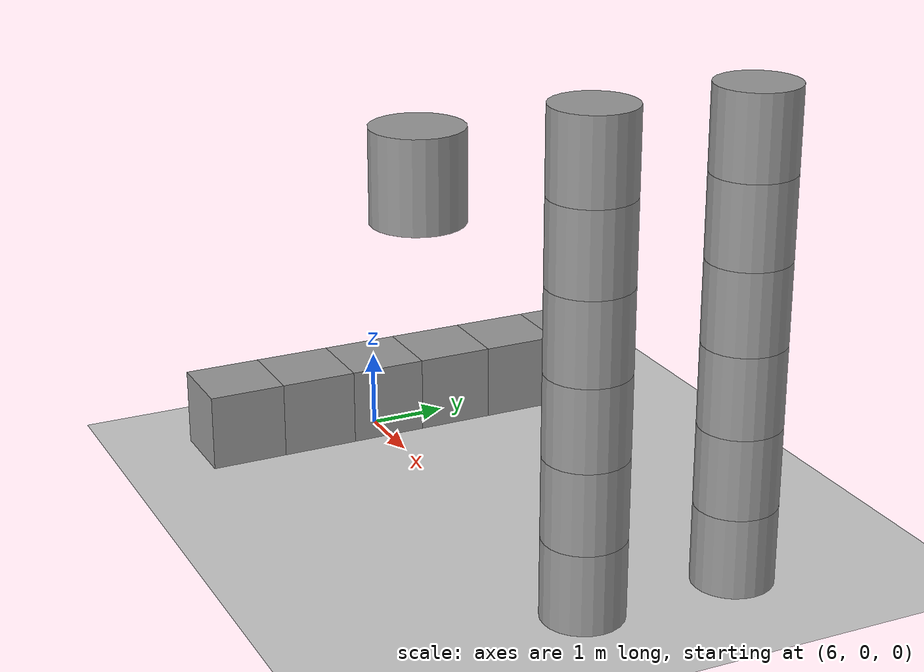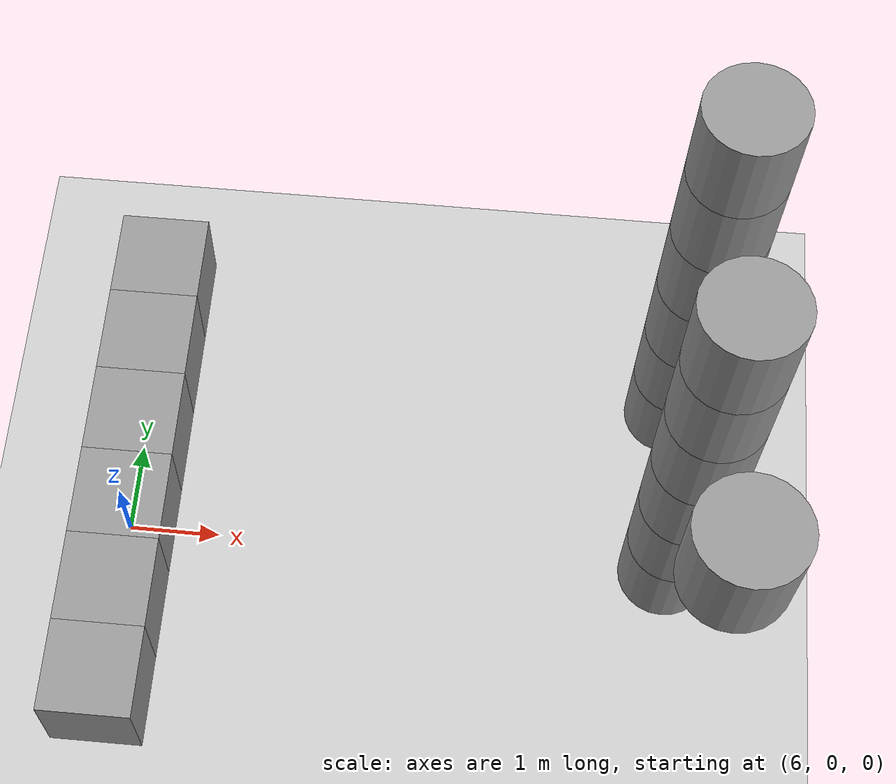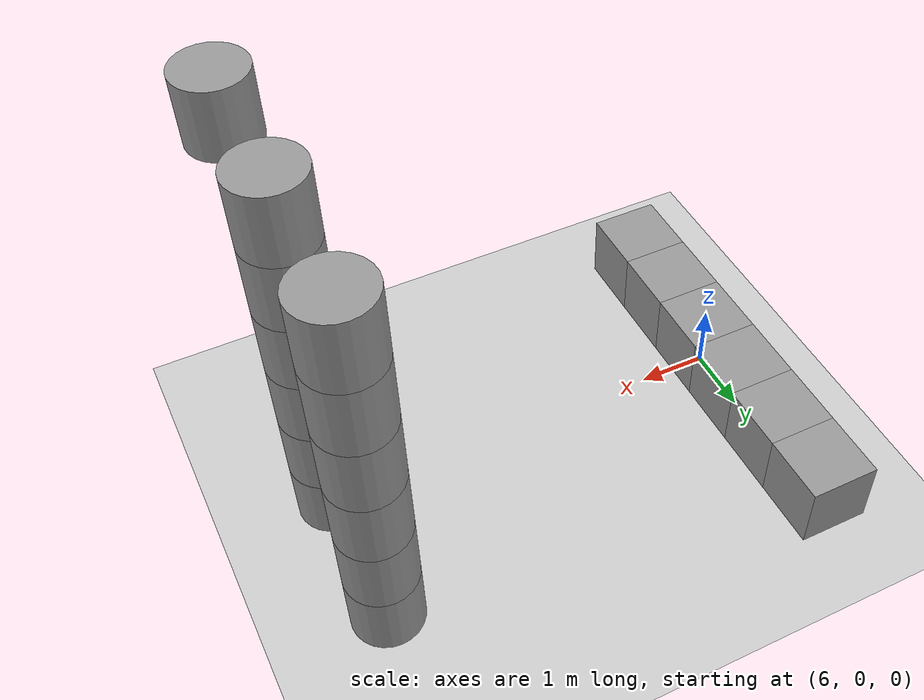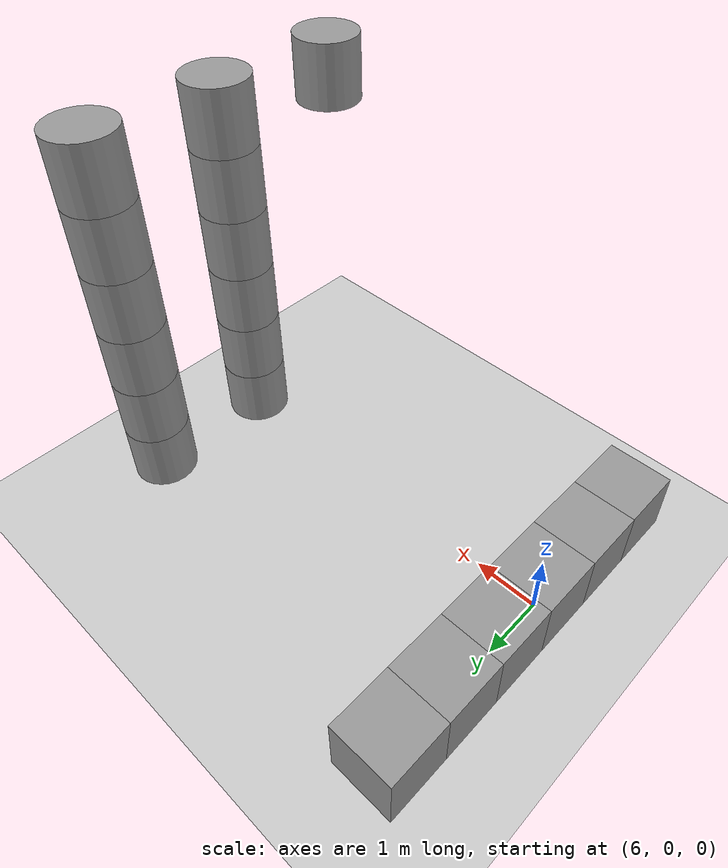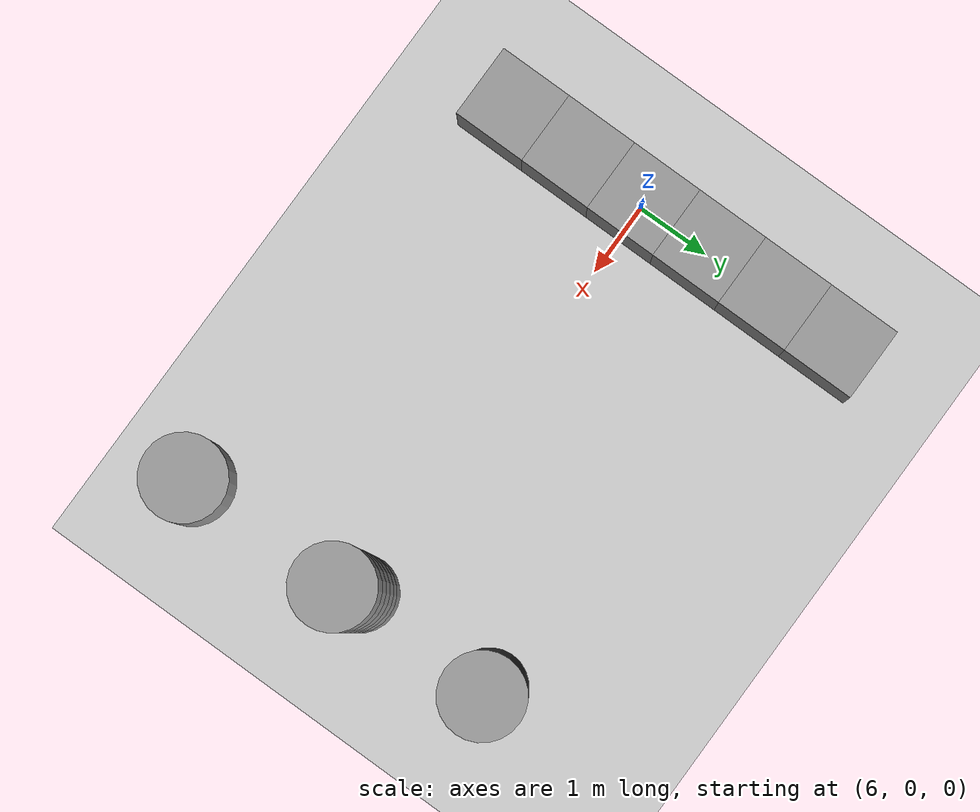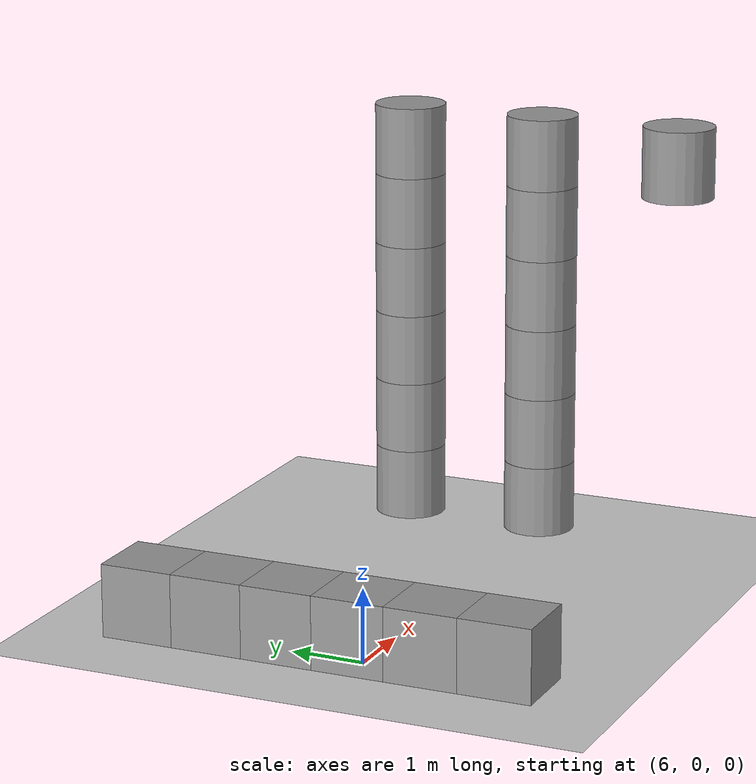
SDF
<sdf version="1.6">
 <world name="default">
  <model name="ground_plane">
   <static>1</static>
   <link name="link">
    <collision name="collision">
     <geometry><plane><normal>0 0 1</normal><size>100 100</size></plane></geometry>
     <surface>
      <contact><collide_bitmask>65535</collide_bitmask></contact>
      <friction><ode><mu>100</mu><mu2>50</mu2></ode></friction>
     </surface>
    </collision>
    <visual name="visual">
     <cast_shadows>0</cast_shadows>
     <geometry><plane><normal>0 0 1</normal><size>100 100</size></plane></geometry>
     <material>
      <script><uri>file://media/materials/scripts/gazebo.material</uri><name>Gazebo/Grey</name></script>
     </material>
    </visual>
   </link>
  </model>
  <model name="obs_box">
   <link name="link">
    <inertial>
     <mass>1</mass>
     <inertia>
      <ixx>0.166667</ixx>
      <ixy>0</ixy>
      <ixz>0</ixz>
      <iyy>0.166667</iyy>
      <iyz>0</iyz>
      <izz>0.166667</izz>
     </inertia>
    </inertial>
    <visual name="visual">
     <geometry><box><size>1 1 1</size></box></geometry>
     <material>
      <script><name>Gazebo/Grey</name><uri>file://media/materials/scripts/gazebo.material</uri></script>
     </material>
    </visual>
    <collision name="collision">
     <geometry><box><size>1 1 1</size></box></geometry>
     <surface>
      <friction>
       <ode><mu>1</mu><mu2>1</mu2><fdir1>0 0 0</fdir1><slip1>0</slip1><slip2>0</slip2></ode>
       <torsional>
        <coefficient>1</coefficient>
        <patch_radius>0</patch_radius>
        <surface_radius>0</surface_radius>
        <use_patch_radius>1</use_patch_radius>
        <ode><slip>0</slip></ode>
       </torsional>
      </friction>
      <bounce><restitution_coefficient>0</restitution_coefficient><threshold>1e+06</threshold></bounce>
      <contact>
       <collide_without_contact>0</collide_without_contact>
       <collide_without_contact_bitmask>1</collide_without_contact_bitmask>
       <collide_bitmask>1</collide_bitmask>
       <ode>
        <soft_cfm>0</soft_cfm>
        <soft_erp>0.2</soft_erp>
        <kp>1e+13</kp>
        <kd>1</kd>
        <max_vel>0.01</max_vel>
        <min_depth>0</min_depth>
       </ode>
       <bullet>
        <split_impulse>1</split_impulse>
        <split_impulse_penetration_threshold>-0.01</split_impulse_penetration_threshold>
        <soft_cfm>0</soft_cfm>
        <soft_erp>0.2</soft_erp>
        <kp>1e+13</kp>
        <kd>1</kd>
       </bullet>
      </contact>
     </surface>
    </collision>
   </link>
   <static>1</static>
   <pose>6 -1 0.5 0 -0 0</pose>
  </model>
  <model name="obs_box_clone">
   <link name="link">
    <inertial>
     <mass>1</mass>
     <inertia>
      <ixx>0.166667</ixx>
      <ixy>0</ixy>
      <ixz>0</ixz>
      <iyy>0.166667</iyy>
      <iyz>0</iyz>
      <izz>0.166667</izz>
     </inertia>
    </inertial>
    <visual name="visual">
     <geometry><box><size>1 1 1</size></box></geometry>
     <material>
      <script><name>Gazebo/Grey</name><uri>file://media/materials/scripts/gazebo.material</uri></script>
     </material>
    </visual>
    <collision name="collision">
     <geometry><box><size>1 1 1</size></box></geometry>
     <surface>
      <friction>
       <ode><mu>1</mu><mu2>1</mu2><fdir1>0 0 0</fdir1><slip1>0</slip1><slip2>0</slip2></ode>
       <torsional>
        <coefficient>1</coefficient>
        <patch_radius>0</patch_radius>
        <surface_radius>0</surface_radius>
        <use_patch_radius>1</use_patch_radius>
        <ode><slip>0</slip></ode>
       </torsional>
      </friction>
      <bounce><restitution_coefficient>0</restitution_coefficient><threshold>1e+06</threshold></bounce>
      <contact>
       <collide_without_contact>0</collide_without_contact>
       <collide_without_contact_bitmask>1</collide_without_contact_bitmask>
       <collide_bitmask>1</collide_bitmask>
       <ode>
        <soft_cfm>0</soft_cfm>
        <soft_erp>0.2</soft_erp>
        <kp>1e+13</kp>
        <kd>1</kd>
        <max_vel>0.01</max_vel>
        <min_depth>0</min_depth>
       </ode>
       <bullet>
        <split_impulse>1</split_impulse>
        <split_impulse_penetration_threshold>-0.01</split_impulse_penetration_threshold>
        <soft_cfm>0</soft_cfm>
        <soft_erp>0.2</soft_erp>
        <kp>1e+13</kp>
        <kd>1</kd>
       </bullet>
      </contact>
     </surface>
    </collision>
   </link>
   <static>1</static>
   <pose>6 1 0.5 0 -0 0</pose>
  </model>
  <model name="obs_box_clone_0">
   <link name="link">
    <inertial>
     <mass>1</mass>
     <inertia>
      <ixx>0.166667</ixx>
      <ixy>0</ixy>
      <ixz>0</ixz>
      <iyy>0.166667</iyy>
      <iyz>0</iyz>
      <izz>0.166667</izz>
     </inertia>
    </inertial>
    <visual name="visual">
     <geometry><box><size>1 1 1</size></box></geometry>
     <material>
      <script><name>Gazebo/Grey</name><uri>file://media/materials/scripts/gazebo.material</uri></script>
     </material>
    </visual>
    <collision name="collision">
     <geometry><box><size>1 1 1</size></box></geometry>
     <surface>
      <friction>
       <ode><mu>1</mu><mu2>1</mu2><fdir1>0 0 0</fdir1><slip1>0</slip1><slip2>0</slip2></ode>
       <torsional>
        <coefficient>1</coefficient>
        <patch_radius>0</patch_radius>
        <surface_radius>0</surface_radius>
        <use_patch_radius>1</use_patch_radius>
        <ode><slip>0</slip></ode>
       </torsional>
      </friction>
      <bounce><restitution_coefficient>0</restitution_coefficient><threshold>1e+06</threshold></bounce>
      <contact>
       <collide_without_contact>0</collide_without_contact>
       <collide_without_contact_bitmask>1</collide_without_contact_bitmask>
       <collide_bitmask>1</collide_bitmask>
       <ode>
        <soft_cfm>0</soft_cfm>
        <soft_erp>0.2</soft_erp>
        <kp>1e+13</kp>
        <kd>1</kd>
        <max_vel>0.01</max_vel>
        <min_depth>0</min_depth>
       </ode>
       <bullet>
        <split_impulse>1</split_impulse>
        <split_impulse_penetration_threshold>-0.01</split_impulse_penetration_threshold>
        <soft_cfm>0</soft_cfm>
        <soft_erp>0.2</soft_erp>
        <kp>1e+13</kp>
        <kd>1</kd>
       </bullet>
      </contact>
     </surface>
    </collision>
   </link>
   <static>1</static>
   <pose>6 0 0.5 0 -0 0</pose>
  </model>
  <model name="obs_cylinder_clone_0">
   <link name="link">
    <inertial>
     <mass>1</mass>
     <inertia><ixx>0.145833</ixx><ixy>0</ixy><ixz>0</ixz><iyy>0.145833</iyy><iyz>0</iyz><izz>0.125</izz></inertia>
    </inertial>
    <visual name="visual">
     <geometry><cylinder><radius>0.5</radius><length>1</length></cylinder></geometry>
     <material>
      <script><name>Gazebo/Grey</name><uri>file://media/materials/scripts/gazebo.material</uri></script>
     </material>
    </visual>
    <collision name="collision">
     <geometry><cylinder><radius>0.5</radius><length>1</length></cylinder></geometry>
     <surface>
      <friction>
       <ode><mu>1</mu><mu2>1</mu2><fdir1>0 0 0</fdir1><slip1>0</slip1><slip2>0</slip2></ode>
       <torsional>
        <coefficient>1</coefficient>
        <patch_radius>0</patch_radius>
        <surface_radius>0</surface_radius>
        <use_patch_radius>1</use_patch_radius>
        <ode><slip>0</slip></ode>
       </torsional>
      </friction>
      <bounce><restitution_coefficient>0</restitution_coefficient><threshold>1e+06</threshold></bounce>
      <contact>
       <collide_without_contact>0</collide_without_contact>
       <collide_without_contact_bitmask>1</collide_without_contact_bitmask>
       <collide_bitmask>1</collide_bitmask>
       <ode>
        <soft_cfm>0</soft_cfm>
        <soft_erp>0.2</soft_erp>
        <kp>1e+13</kp>
        <kd>1</kd>
        <max_vel>0.01</max_vel>
        <min_depth>0</min_depth>
       </ode>
       <bullet>
        <split_impulse>1</split_impulse>
        <split_impulse_penetration_threshold>-0.01</split_impulse_penetration_threshold>
        <soft_cfm>0</soft_cfm>
        <soft_erp>0.2</soft_erp>
        <kp>1e+13</kp>
        <kd>1</kd>
       </bullet>
      </contact>
     </surface>
    </collision>
   </link>
   <static>1</static>
   <pose>12 0 0.5 0 -0 0</pose>
  </model>
  <model name="obs_cylinder_clone_0_clone">
   <link name="link">
    <inertial>
     <mass>1</mass>
     <inertia><ixx>0.145833</ixx><ixy>0</ixy><ixz>0</ixz><iyy>0.145833</iyy><iyz>0</iyz><izz>0.125</izz></inertia>
    </inertial>
    <visual name="visual">
     <geometry><cylinder><radius>0.5</radius><length>1</length></cylinder></geometry>
     <material>
      <script><name>Gazebo/Grey</name><uri>file://media/materials/scripts/gazebo.material</uri></script>
     </material>
    </visual>
    <collision name="collision">
     <geometry><cylinder><radius>0.5</radius><length>1</length></cylinder></geometry>
     <surface>
      <friction>
       <ode><mu>1</mu><mu2>1</mu2><fdir1>0 0 0</fdir1><slip1>0</slip1><slip2>0</slip2></ode>
       <torsional>
        <coefficient>1</coefficient>
        <patch_radius>0</patch_radius>
        <surface_radius>0</surface_radius>
        <use_patch_radius>1</use_patch_radius>
        <ode><slip>0</slip></ode>
       </torsional>
      </friction>
      <bounce><restitution_coefficient>0</restitution_coefficient><threshold>1e+06</threshold></bounce>
      <contact>
       <collide_without_contact>0</collide_without_contact>
       <collide_without_contact_bitmask>1</collide_without_contact_bitmask>
       <collide_bitmask>1</collide_bitmask>
       <ode>
        <soft_cfm>0</soft_cfm>
        <soft_erp>0.2</soft_erp>
        <kp>1e+13</kp>
        <kd>1</kd>
        <max_vel>0.01</max_vel>
        <min_depth>0</min_depth>
       </ode>
       <bullet>
        <split_impulse>1</split_impulse>
        <split_impulse_penetration_threshold>-0.01</split_impulse_penetration_threshold>
        <soft_cfm>0</soft_cfm>
        <soft_erp>0.2</soft_erp>
        <kp>1e+13</kp>
        <kd>1</kd>
       </bullet>
      </contact>
     </surface>
    </collision>
   </link>
   <static>1</static>
   <pose>12 2 0.5 0 -0 0</pose>
  </model>
  <model name="obs_cylinder_clone_clone_0">
   <link name="link">
    <inertial>
     <mass>1</mass>
     <inertia><ixx>0.145833</ixx><ixy>0</ixy><ixz>0</ixz><iyy>0.145833</iyy><iyz>0</iyz><izz>0.125</izz></inertia>
    </inertial>
    <visual name="visual">
     <geometry><cylinder><radius>0.5</radius><length>1</length></cylinder></geometry>
     <material>
      <script><name>Gazebo/Grey</name><uri>file://media/materials/scripts/gazebo.material</uri></script>
     </material>
    </visual>
    <collision name="collision">
     <geometry><cylinder><radius>0.5</radius><length>1</length></cylinder></geometry>
     <surface>
      <friction>
       <ode><mu>1</mu><mu2>1</mu2><fdir1>0 0 0</fdir1><slip1>0</slip1><slip2>0</slip2></ode>
       <torsional>
        <coefficient>1</coefficient>
        <patch_radius>0</patch_radius>
        <surface_radius>0</surface_radius>
        <use_patch_radius>1</use_patch_radius>
        <ode><slip>0</slip></ode>
       </torsional>
      </friction>
      <bounce><restitution_coefficient>0</restitution_coefficient><threshold>1e+06</threshold></bounce>
      <contact>
       <collide_without_contact>0</collide_without_contact>
       <collide_without_contact_bitmask>1</collide_without_contact_bitmask>
       <collide_bitmask>1</collide_bitmask>
       <ode>
        <soft_cfm>0</soft_cfm>
        <soft_erp>0.2</soft_erp>
        <kp>1e+13</kp>
        <kd>1</kd>
        <max_vel>0.01</max_vel>
        <min_depth>0</min_depth>
       </ode>
       <bullet>
        <split_impulse>1</split_impulse>
        <split_impulse_penetration_threshold>-0.01</split_impulse_penetration_threshold>
        <soft_cfm>0</soft_cfm>
        <soft_erp>0.2</soft_erp>
        <kp>1e+13</kp>
        <kd>1</kd>
       </bullet>
      </contact>
     </surface>
    </collision>
   </link>
   <static>1</static>
   <pose>12 0 1.5 0 -0 0</pose>
  </model>
  <model name="obs_cylinder_clone_clone_0_clone">
   <link name="link">
    <inertial>
     <mass>1</mass>
     <inertia><ixx>0.145833</ixx><ixy>0</ixy><ixz>0</ixz><iyy>0.145833</iyy><iyz>0</iyz><izz>0.125</izz></inertia>
    </inertial>
    <visual name="visual">
     <geometry><cylinder><radius>0.5</radius><length>1</length></cylinder></geometry>
     <material>
      <script><name>Gazebo/Grey</name><uri>file://media/materials/scripts/gazebo.material</uri></script>
     </material>
    </visual>
    <collision name="collision">
     <geometry><cylinder><radius>0.5</radius><length>1</length></cylinder></geometry>
     <surface>
      <friction>
       <ode><mu>1</mu><mu2>1</mu2><fdir1>0 0 0</fdir1><slip1>0</slip1><slip2>0</slip2></ode>
       <torsional>
        <coefficient>1</coefficient>
        <patch_radius>0</patch_radius>
        <surface_radius>0</surface_radius>
        <use_patch_radius>1</use_patch_radius>
        <ode><slip>0</slip></ode>
       </torsional>
      </friction>
      <bounce><restitution_coefficient>0</restitution_coefficient><threshold>1e+06</threshold></bounce>
      <contact>
       <collide_without_contact>0</collide_without_contact>
       <collide_without_contact_bitmask>1</collide_without_contact_bitmask>
       <collide_bitmask>1</collide_bitmask>
       <ode>
        <soft_cfm>0</soft_cfm>
        <soft_erp>0.2</soft_erp>
        <kp>1e+13</kp>
        <kd>1</kd>
        <max_vel>0.01</max_vel>
        <min_depth>0</min_depth>
       </ode>
       <bullet>
        <split_impulse>1</split_impulse>
        <split_impulse_penetration_threshold>-0.01</split_impulse_penetration_threshold>
        <soft_cfm>0</soft_cfm>
        <soft_erp>0.2</soft_erp>
        <kp>1e+13</kp>
        <kd>1</kd>
       </bullet>
      </contact>
     </surface>
    </collision>
   </link>
   <static>1</static>
   <pose>12 2 1.5 0 -0 0</pose>
  </model>
  <model name="obs_cylinder_clone_clone_clone">
   <link name="link">
    <inertial>
     <mass>1</mass>
     <inertia><ixx>0.145833</ixx><ixy>0</ixy><ixz>0</ixz><iyy>0.145833</iyy><iyz>0</iyz><izz>0.125</izz></inertia>
    </inertial>
    <visual name="visual">
     <geometry><cylinder><radius>0.5</radius><length>1</length></cylinder></geometry>
     <material>
      <script><name>Gazebo/Grey</name><uri>file://media/materials/scripts/gazebo.material</uri></script>
     </material>
    </visual>
    <collision name="collision">
     <geometry><cylinder><radius>0.5</radius><length>1</length></cylinder></geometry>
     <surface>
      <friction>
       <ode><mu>1</mu><mu2>1</mu2><fdir1>0 0 0</fdir1><slip1>0</slip1><slip2>0</slip2></ode>
       <torsional>
        <coefficient>1</coefficient>
        <patch_radius>0</patch_radius>
        <surface_radius>0</surface_radius>
        <use_patch_radius>1</use_patch_radius>
        <ode><slip>0</slip></ode>
       </torsional>
      </friction>
      <bounce><restitution_coefficient>0</restitution_coefficient><threshold>1e+06</threshold></bounce>
      <contact>
       <collide_without_contact>0</collide_without_contact>
       <collide_without_contact_bitmask>1</collide_without_contact_bitmask>
       <collide_bitmask>1</collide_bitmask>
       <ode>
        <soft_cfm>0</soft_cfm>
        <soft_erp>0.2</soft_erp>
        <kp>1e+13</kp>
        <kd>1</kd>
        <max_vel>0.01</max_vel>
        <min_depth>0</min_depth>
       </ode>
       <bullet>
        <split_impulse>1</split_impulse>
        <split_impulse_penetration_threshold>-0.01</split_impulse_penetration_threshold>
        <soft_cfm>0</soft_cfm>
        <soft_erp>0.2</soft_erp>
        <kp>1e+13</kp>
        <kd>1</kd>
       </bullet>
      </contact>
     </surface>
    </collision>
   </link>
   <static>1</static>
   <pose>12 0 2.5 0 -0 0</pose>
  </model>
  <model name="obs_cylinder_clone_clone_clone_clone">
   <link name="link">
    <inertial>
     <mass>1</mass>
     <inertia><ixx>0.145833</ixx><ixy>0</ixy><ixz>0</ixz><iyy>0.145833</iyy><iyz>0</iyz><izz>0.125</izz></inertia>
    </inertial>
    <visual name="visual">
     <geometry><cylinder><radius>0.5</radius><length>1</length></cylinder></geometry>
     <material>
      <script><name>Gazebo/Grey</name><uri>file://media/materials/scripts/gazebo.material</uri></script>
     </material>
    </visual>
    <collision name="collision">
     <geometry><cylinder><radius>0.5</radius><length>1</length></cylinder></geometry>
     <surface>
      <friction>
       <ode><mu>1</mu><mu2>1</mu2><fdir1>0 0 0</fdir1><slip1>0</slip1><slip2>0</slip2></ode>
       <torsional>
        <coefficient>1</coefficient>
        <patch_radius>0</patch_radius>
        <surface_radius>0</surface_radius>
        <use_patch_radius>1</use_patch_radius>
        <ode><slip>0</slip></ode>
       </torsional>
      </friction>
      <bounce><restitution_coefficient>0</restitution_coefficient><threshold>1e+06</threshold></bounce>
      <contact>
       <collide_without_contact>0</collide_without_contact>
       <collide_without_contact_bitmask>1</collide_without_contact_bitmask>
       <collide_bitmask>1</collide_bitmask>
       <ode>
        <soft_cfm>0</soft_cfm>
        <soft_erp>0.2</soft_erp>
        <kp>1e+13</kp>
        <kd>1</kd>
        <max_vel>0.01</max_vel>
        <min_depth>0</min_depth>
       </ode>
       <bullet>
        <split_impulse>1</split_impulse>
        <split_impulse_penetration_threshold>-0.01</split_impulse_penetration_threshold>
        <soft_cfm>0</soft_cfm>
        <soft_erp>0.2</soft_erp>
        <kp>1e+13</kp>
        <kd>1</kd>
       </bullet>
      </contact>
     </surface>
    </collision>
   </link>
   <static>1</static>
   <pose>12 2 2.5 0 -0 0</pose>
  </model>
  <model name="obs_cylinder_clone_clone_clone_0_clone">
   <link name="link">
    <inertial>
     <mass>1</mass>
     <inertia><ixx>0.145833</ixx><ixy>0</ixy><ixz>0</ixz><iyy>0.145833</iyy><iyz>0</iyz><izz>0.125</izz></inertia>
    </inertial>
    <visual name="visual">
     <geometry><cylinder><radius>0.5</radius><length>1</length></cylinder></geometry>
     <material>
      <script><name>Gazebo/Grey</name><uri>file://media/materials/scripts/gazebo.material</uri></script>
     </material>
    </visual>
    <collision name="collision">
     <geometry><cylinder><radius>0.5</radius><length>1</length></cylinder></geometry>
     <surface>
      <friction>
       <ode><mu>1</mu><mu2>1</mu2><fdir1>0 0 0</fdir1><slip1>0</slip1><slip2>0</slip2></ode>
       <torsional>
        <coefficient>1</coefficient>
        <patch_radius>0</patch_radius>
        <surface_radius>0</surface_radius>
        <use_patch_radius>1</use_patch_radius>
        <ode><slip>0</slip></ode>
       </torsional>
      </friction>
      <bounce><restitution_coefficient>0</restitution_coefficient><threshold>1e+06</threshold></bounce>
      <contact>
       <collide_without_contact>0</collide_without_contact>
       <collide_without_contact_bitmask>1</collide_without_contact_bitmask>
       <collide_bitmask>1</collide_bitmask>
       <ode>
        <soft_cfm>0</soft_cfm>
        <soft_erp>0.2</soft_erp>
        <kp>1e+13</kp>
        <kd>1</kd>
        <max_vel>0.01</max_vel>
        <min_depth>0</min_depth>
       </ode>
       <bullet>
        <split_impulse>1</split_impulse>
        <split_impulse_penetration_threshold>-0.01</split_impulse_penetration_threshold>
        <soft_cfm>0</soft_cfm>
        <soft_erp>0.2</soft_erp>
        <kp>1e+13</kp>
        <kd>1</kd>
       </bullet>
      </contact>
     </surface>
    </collision>
   </link>
   <static>1</static>
   <pose>12 0 3.5 0 -0 0</pose>
  </model>
  <model name="obs_cylinder_clone_clone_clone_0_clone_clone">
   <link name="link">
    <inertial>
     <mass>1</mass>
     <inertia><ixx>0.145833</ixx><ixy>0</ixy><ixz>0</ixz><iyy>0.145833</iyy><iyz>0</iyz><izz>0.125</izz></inertia>
    </inertial>
    <visual name="visual">
     <geometry><cylinder><radius>0.5</radius><length>1</length></cylinder></geometry>
     <material>
      <script><name>Gazebo/Grey</name><uri>file://media/materials/scripts/gazebo.material</uri></script>
     </material>
    </visual>
    <collision name="collision">
     <geometry><cylinder><radius>0.5</radius><length>1</length></cylinder></geometry>
     <surface>
      <friction>
       <ode><mu>1</mu><mu2>1</mu2><fdir1>0 0 0</fdir1><slip1>0</slip1><slip2>0</slip2></ode>
       <torsional>
        <coefficient>1</coefficient>
        <patch_radius>0</patch_radius>
        <surface_radius>0</surface_radius>
        <use_patch_radius>1</use_patch_radius>
        <ode><slip>0</slip></ode>
       </torsional>
      </friction>
      <bounce><restitution_coefficient>0</restitution_coefficient><threshold>1e+06</threshold></bounce>
      <contact>
       <collide_without_contact>0</collide_without_contact>
       <collide_without_contact_bitmask>1</collide_without_contact_bitmask>
       <collide_bitmask>1</collide_bitmask>
       <ode>
        <soft_cfm>0</soft_cfm>
        <soft_erp>0.2</soft_erp>
        <kp>1e+13</kp>
        <kd>1</kd>
        <max_vel>0.01</max_vel>
        <min_depth>0</min_depth>
       </ode>
       <bullet>
        <split_impulse>1</split_impulse>
        <split_impulse_penetration_threshold>-0.01</split_impulse_penetration_threshold>
        <soft_cfm>0</soft_cfm>
        <soft_erp>0.2</soft_erp>
        <kp>1e+13</kp>
        <kd>1</kd>
       </bullet>
      </contact>
     </surface>
    </collision>
   </link>
   <static>1</static>
   <pose>12 2 3.5 0 -0 0</pose>
  </model>
  <model name="obs_cylinder_clone_clone_clone_0_clone_0_clone">
   <link name="link">
    <inertial>
     <mass>1</mass>
     <inertia><ixx>0.145833</ixx><ixy>0</ixy><ixz>0</ixz><iyy>0.145833</iyy><iyz>0</iyz><izz>0.125</izz></inertia>
    </inertial>
    <visual name="visual">
     <geometry><cylinder><radius>0.5</radius><length>1</length></cylinder></geometry>
     <material>
      <script><name>Gazebo/Grey</name><uri>file://media/materials/scripts/gazebo.material</uri></script>
     </material>
    </visual>
    <collision name="collision">
     <geometry><cylinder><radius>0.5</radius><length>1</length></cylinder></geometry>
     <surface>
      <friction>
       <ode><mu>1</mu><mu2>1</mu2><fdir1>0 0 0</fdir1><slip1>0</slip1><slip2>0</slip2></ode>
       <torsional>
        <coefficient>1</coefficient>
        <patch_radius>0</patch_radius>
        <surface_radius>0</surface_radius>
        <use_patch_radius>1</use_patch_radius>
        <ode><slip>0</slip></ode>
       </torsional>
      </friction>
      <bounce><restitution_coefficient>0</restitution_coefficient><threshold>1e+06</threshold></bounce>
      <contact>
       <collide_without_contact>0</collide_without_contact>
       <collide_without_contact_bitmask>1</collide_without_contact_bitmask>
       <collide_bitmask>1</collide_bitmask>
       <ode>
        <soft_cfm>0</soft_cfm>
        <soft_erp>0.2</soft_erp>
        <kp>1e+13</kp>
        <kd>1</kd>
        <max_vel>0.01</max_vel>
        <min_depth>0</min_depth>
       </ode>
       <bullet>
        <split_impulse>1</split_impulse>
        <split_impulse_penetration_threshold>-0.01</split_impulse_penetration_threshold>
        <soft_cfm>0</soft_cfm>
        <soft_erp>0.2</soft_erp>
        <kp>1e+13</kp>
        <kd>1</kd>
       </bullet>
      </contact>
     </surface>
    </collision>
   </link>
   <static>1</static>
   <pose>12 0 4.5 0 -0 0</pose>
  </model>
  <model name="obs_cylinder_clone_clone_clone_0_clone_0_clone_0">
   <link name="link">
    <inertial>
     <mass>1</mass>
     <inertia><ixx>0.145833</ixx><ixy>0</ixy><ixz>0</ixz><iyy>0.145833</iyy><iyz>0</iyz><izz>0.125</izz></inertia>
    </inertial>
    <visual name="visual">
     <geometry><cylinder><radius>0.5</radius><length>1</length></cylinder></geometry>
     <material>
      <script><name>Gazebo/Grey</name><uri>file://media/materials/scripts/gazebo.material</uri></script>
     </material>
    </visual>
    <collision name="collision">
     <geometry><cylinder><radius>0.5</radius><length>1</length></cylinder></geometry>
     <surface>
      <friction>
       <ode><mu>1</mu><mu2>1</mu2><fdir1>0 0 0</fdir1><slip1>0</slip1><slip2>0</slip2></ode>
       <torsional>
        <coefficient>1</coefficient>
        <patch_radius>0</patch_radius>
        <surface_radius>0</surface_radius>
        <use_patch_radius>1</use_patch_radius>
        <ode><slip>0</slip></ode>
       </torsional>
      </friction>
      <bounce><restitution_coefficient>0</restitution_coefficient><threshold>1e+06</threshold></bounce>
      <contact>
       <collide_without_contact>0</collide_without_contact>
       <collide_without_contact_bitmask>1</collide_without_contact_bitmask>
       <collide_bitmask>1</collide_bitmask>
       <ode>
        <soft_cfm>0</soft_cfm>
        <soft_erp>0.2</soft_erp>
        <kp>1e+13</kp>
        <kd>1</kd>
        <max_vel>0.01</max_vel>
        <min_depth>0</min_depth>
       </ode>
       <bullet>
        <split_impulse>1</split_impulse>
        <split_impulse_penetration_threshold>-0.01</split_impulse_penetration_threshold>
        <soft_cfm>0</soft_cfm>
        <soft_erp>0.2</soft_erp>
        <kp>1e+13</kp>
        <kd>1</kd>
       </bullet>
      </contact>
     </surface>
    </collision>
   </link>
   <static>1</static>
   <pose>12 2 4.5 0 -0 0</pose>
  </model>
  <model name="obs_box_clone_2">
   <link name="link">
    <inertial>
     <mass>1</mass>
     <inertia>
      <ixx>0.166667</ixx>
      <ixy>0</ixy>
      <ixz>0</ixz>
      <iyy>0.166667</iyy>
      <iyz>0</iyz>
      <izz>0.166667</izz>
     </inertia>
    </inertial>
    <visual name="visual">
     <geometry><box><size>1 1 1</size></box></geometry>
     <material>
      <script><name>Gazebo/Grey</name><uri>file://media/materials/scripts/gazebo.material</uri></script>
     </material>
    </visual>
    <collision name="collision">
     <geometry><box><size>1 1 1</size></box></geometry>
     <surface>
      <friction>
       <ode><mu>1</mu><mu2>1</mu2><fdir1>0 0 0</fdir1><slip1>0</slip1><slip2>0</slip2></ode>
       <torsional>
        <coefficient>1</coefficient>
        <patch_radius>0</patch_radius>
        <surface_radius>0</surface_radius>
        <use_patch_radius>1</use_patch_radius>
        <ode><slip>0</slip></ode>
       </torsional>
      </friction>
      <bounce><restitution_coefficient>0</restitution_coefficient><threshold>1e+06</threshold></bounce>
      <contact>
       <collide_without_contact>0</collide_without_contact>
       <collide_without_contact_bitmask>1</collide_without_contact_bitmask>
       <collide_bitmask>1</collide_bitmask>
       <ode>
        <soft_cfm>0</soft_cfm>
        <soft_erp>0.2</soft_erp>
        <kp>1e+13</kp>
        <kd>1</kd>
        <max_vel>0.01</max_vel>
        <min_depth>0</min_depth>
       </ode>
       <bullet>
        <split_impulse>1</split_impulse>
        <split_impulse_penetration_threshold>-0.01</split_impulse_penetration_threshold>
        <soft_cfm>0</soft_cfm>
        <soft_erp>0.2</soft_erp>
        <kp>1e+13</kp>
        <kd>1</kd>
       </bullet>
      </contact>
     </surface>
    </collision>
   </link>
   <static>1</static>
   <pose>6 -2 0.5 0 -0 0</pose>
  </model>
  <model name="obs_box_clone_5">
   <link name="link">
    <inertial>
     <mass>1</mass>
     <inertia>
      <ixx>0.166667</ixx>
      <ixy>0</ixy>
      <ixz>0</ixz>
      <iyy>0.166667</iyy>
      <iyz>0</iyz>
      <izz>0.166667</izz>
     </inertia>
    </inertial>
    <visual name="visual">
     <geometry><box><size>1 1 1</size></box></geometry>
     <material>
      <script><name>Gazebo/Grey</name><uri>file://media/materials/scripts/gazebo.material</uri></script>
     </material>
    </visual>
    <collision name="collision">
     <geometry><box><size>1 1 1</size></box></geometry>
     <surface>
      <friction>
       <ode><mu>1</mu><mu2>1</mu2><fdir1>0 0 0</fdir1><slip1>0</slip1><slip2>0</slip2></ode>
       <torsional>
        <coefficient>1</coefficient>
        <patch_radius>0</patch_radius>
        <surface_radius>0</surface_radius>
        <use_patch_radius>1</use_patch_radius>
        <ode><slip>0</slip></ode>
       </torsional>
      </friction>
      <bounce><restitution_coefficient>0</restitution_coefficient><threshold>1e+06</threshold></bounce>
      <contact>
       <collide_without_contact>0</collide_without_contact>
       <collide_without_contact_bitmask>1</collide_without_contact_bitmask>
       <collide_bitmask>1</collide_bitmask>
       <ode>
        <soft_cfm>0</soft_cfm>
        <soft_erp>0.2</soft_erp>
        <kp>1e+13</kp>
        <kd>1</kd>
        <max_vel>0.01</max_vel>
        <min_depth>0</min_depth>
       </ode>
       <bullet>
        <split_impulse>1</split_impulse>
        <split_impulse_penetration_threshold>-0.01</split_impulse_penetration_threshold>
        <soft_cfm>0</soft_cfm>
        <soft_erp>0.2</soft_erp>
        <kp>1e+13</kp>
        <kd>1</kd>
       </bullet>
      </contact>
     </surface>
    </collision>
   </link>
   <static>1</static>
   <pose>6 2 0.5 0 -0 0</pose>
  </model>
  <model name="obs_box_clone_6">
   <link name="link">
    <inertial>
     <mass>1</mass>
     <inertia>
      <ixx>0.166667</ixx>
      <ixy>0</ixy>
      <ixz>0</ixz>
      <iyy>0.166667</iyy>
      <iyz>0</iyz>
      <izz>0.166667</izz>
     </inertia>
    </inertial>
    <visual name="visual">
     <geometry><box><size>1 1 1</size></box></geometry>
     <material>
      <script><name>Gazebo/Grey</name><uri>file://media/materials/scripts/gazebo.material</uri></script>
     </material>
    </visual>
    <collision name="collision">
     <geometry><box><size>1 1 1</size></box></geometry>
     <surface>
      <friction>
       <ode><mu>1</mu><mu2>1</mu2><fdir1>0 0 0</fdir1><slip1>0</slip1><slip2>0</slip2></ode>
       <torsional>
        <coefficient>1</coefficient>
        <patch_radius>0</patch_radius>
        <surface_radius>0</surface_radius>
        <use_patch_radius>1</use_patch_radius>
        <ode><slip>0</slip></ode>
       </torsional>
      </friction>
      <bounce><restitution_coefficient>0</restitution_coefficient><threshold>1e+06</threshold></bounce>
      <contact>
       <collide_without_contact>0</collide_without_contact>
       <collide_without_contact_bitmask>1</collide_without_contact_bitmask>
       <collide_bitmask>1</collide_bitmask>
       <ode>
        <soft_cfm>0</soft_cfm>
        <soft_erp>0.2</soft_erp>
        <kp>1e+13</kp>
        <kd>1</kd>
        <max_vel>0.01</max_vel>
        <min_depth>0</min_depth>
       </ode>
       <bullet>
        <split_impulse>1</split_impulse>
        <split_impulse_penetration_threshold>-0.01</split_impulse_penetration_threshold>
        <soft_cfm>0</soft_cfm>
        <soft_erp>0.2</soft_erp>
        <kp>1e+13</kp>
        <kd>1</kd>
       </bullet>
      </contact>
     </surface>
    </collision>
   </link>
   <static>1</static>
   <pose>6 3 0.5 0 -0 0</pose>
  </model>
  <model name="obs_cylinder_clone_clone_clone_0_clone_0_clone_1">
   <link name="link">
    <inertial>
     <mass>1</mass>
     <inertia><ixx>0.145833</ixx><ixy>0</ixy><ixz>0</ixz><iyy>0.145833</iyy><iyz>0</iyz><izz>0.125</izz></inertia>
    </inertial>
    <visual name="visual">
     <geometry><cylinder><radius>0.5</radius><length>1</length></cylinder></geometry>
     <material>
      <script><name>Gazebo/Grey</name><uri>file://media/materials/scripts/gazebo.material</uri></script>
     </material>
    </visual>
    <collision name="collision">
     <geometry><cylinder><radius>0.5</radius><length>1</length></cylinder></geometry>
     <surface>
      <friction>
       <ode><mu>1</mu><mu2>1</mu2><fdir1>0 0 0</fdir1><slip1>0</slip1><slip2>0</slip2></ode>
       <torsional>
        <coefficient>1</coefficient>
        <patch_radius>0</patch_radius>
        <surface_radius>0</surface_radius>
        <use_patch_radius>1</use_patch_radius>
        <ode><slip>0</slip></ode>
       </torsional>
      </friction>
      <bounce><restitution_coefficient>0</restitution_coefficient><threshold>1e+06</threshold></bounce>
      <contact>
       <collide_without_contact>0</collide_without_contact>
       <collide_without_contact_bitmask>1</collide_without_contact_bitmask>
       <collide_bitmask>1</collide_bitmask>
       <ode>
        <soft_cfm>0</soft_cfm>
        <soft_erp>0.2</soft_erp>
        <kp>1e+13</kp>
        <kd>1</kd>
        <max_vel>0.01</max_vel>
        <min_depth>0</min_depth>
       </ode>
       <bullet>
        <split_impulse>1</split_impulse>
        <split_impulse_penetration_threshold>-0.01</split_impulse_penetration_threshold>
        <soft_cfm>0</soft_cfm>
        <soft_erp>0.2</soft_erp>
        <kp>1e+13</kp>
        <kd>1</kd>
       </bullet>
      </contact>
     </surface>
    </collision>
   </link>
   <static>1</static>
   <pose>12 -2 5.5 0 -0 0</pose>
  </model>
  <model name="obs_cylinder_clone_clone_clone_0_clone_0_clone_1_clone">
   <link name="link">
    <inertial>
     <mass>1</mass>
     <inertia><ixx>0.145833</ixx><ixy>0</ixy><ixz>0</ixz><iyy>0.145833</iyy><iyz>0</iyz><izz>0.125</izz></inertia>
    </inertial>
    <visual name="visual">
     <geometry><cylinder><radius>0.5</radius><length>1</length></cylinder></geometry>
     <material>
      <script><name>Gazebo/Grey</name><uri>file://media/materials/scripts/gazebo.material</uri></script>
     </material>
    </visual>
    <collision name="collision">
     <geometry><cylinder><radius>0.5</radius><length>1</length></cylinder></geometry>
     <surface>
      <friction>
       <ode><mu>1</mu><mu2>1</mu2><fdir1>0 0 0</fdir1><slip1>0</slip1><slip2>0</slip2></ode>
       <torsional>
        <coefficient>1</coefficient>
        <patch_radius>0</patch_radius>
        <surface_radius>0</surface_radius>
        <use_patch_radius>1</use_patch_radius>
        <ode><slip>0</slip></ode>
       </torsional>
      </friction>
      <bounce><restitution_coefficient>0</restitution_coefficient><threshold>1e+06</threshold></bounce>
      <contact>
       <collide_without_contact>0</collide_without_contact>
       <collide_without_contact_bitmask>1</collide_without_contact_bitmask>
       <collide_bitmask>1</collide_bitmask>
       <ode>
        <soft_cfm>0</soft_cfm>
        <soft_erp>0.2</soft_erp>
        <kp>1e+13</kp>
        <kd>1</kd>
        <max_vel>0.01</max_vel>
        <min_depth>0</min_depth>
       </ode>
       <bullet>
        <split_impulse>1</split_impulse>
        <split_impulse_penetration_threshold>-0.01</split_impulse_penetration_threshold>
        <soft_cfm>0</soft_cfm>
        <soft_erp>0.2</soft_erp>
        <kp>1e+13</kp>
        <kd>1</kd>
       </bullet>
      </contact>
     </surface>
    </collision>
   </link>
   <static>1</static>
   <pose>12 0 5.5 0 -0 0</pose>
  </model>
  <model name="obs_cylinder_clone_clone_clone_0_clone_0_clone_1_clone_0">
   <link name="link">
    <inertial>
     <mass>1</mass>
     <inertia><ixx>0.145833</ixx><ixy>0</ixy><ixz>0</ixz><iyy>0.145833</iyy><iyz>0</iyz><izz>0.125</izz></inertia>
    </inertial>
    <visual name="visual">
     <geometry><cylinder><radius>0.5</radius><length>1</length></cylinder></geometry>
     <material>
      <script><name>Gazebo/Grey</name><uri>file://media/materials/scripts/gazebo.material</uri></script>
     </material>
    </visual>
    <collision name="collision">
     <geometry><cylinder><radius>0.5</radius><length>1</length></cylinder></geometry>
     <surface>
      <friction>
       <ode><mu>1</mu><mu2>1</mu2><fdir1>0 0 0</fdir1><slip1>0</slip1><slip2>0</slip2></ode>
       <torsional>
        <coefficient>1</coefficient>
        <patch_radius>0</patch_radius>
        <surface_radius>0</surface_radius>
        <use_patch_radius>1</use_patch_radius>
        <ode><slip>0</slip></ode>
       </torsional>
      </friction>
      <bounce><restitution_coefficient>0</restitution_coefficient><threshold>1e+06</threshold></bounce>
      <contact>
       <collide_without_contact>0</collide_without_contact>
       <collide_without_contact_bitmask>1</collide_without_contact_bitmask>
       <collide_bitmask>1</collide_bitmask>
       <ode>
        <soft_cfm>0</soft_cfm>
        <soft_erp>0.2</soft_erp>
        <kp>1e+13</kp>
        <kd>1</kd>
        <max_vel>0.01</max_vel>
        <min_depth>0</min_depth>
       </ode>
       <bullet>
        <split_impulse>1</split_impulse>
        <split_impulse_penetration_threshold>-0.01</split_impulse_penetration_threshold>
        <soft_cfm>0</soft_cfm>
        <soft_erp>0.2</soft_erp>
        <kp>1e+13</kp>
        <kd>1</kd>
       </bullet>
      </contact>
     </surface>
    </collision>
   </link>
   <static>1</static>
   <pose>12 2 5.5 0 -0 0</pose>
  </model>
 </world>
</sdf>
